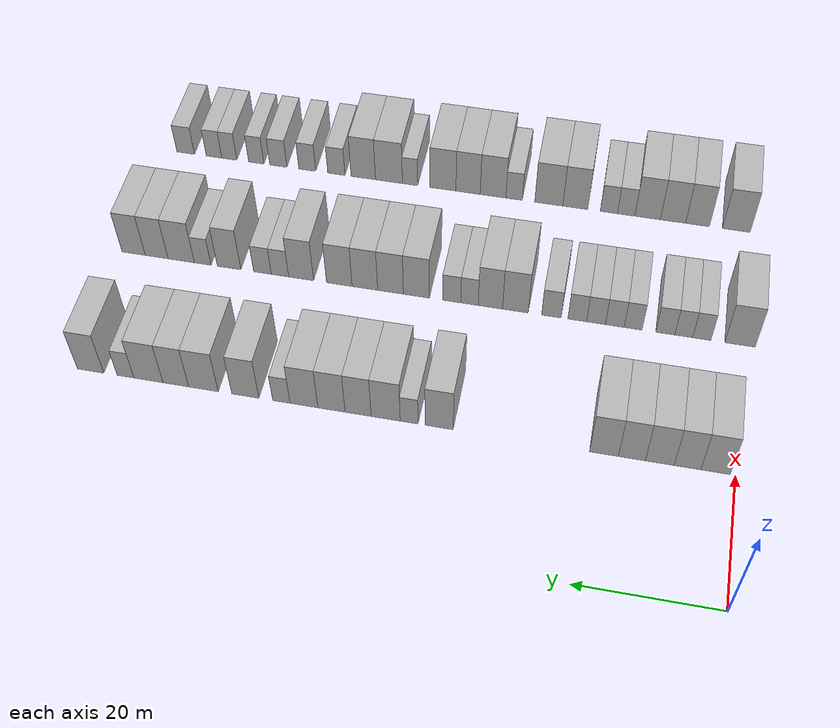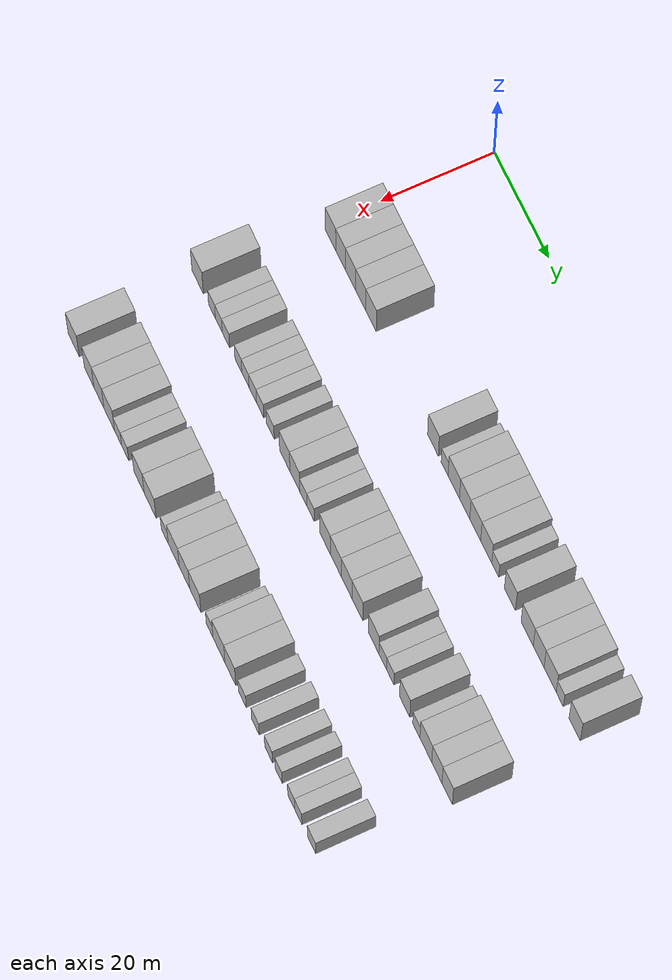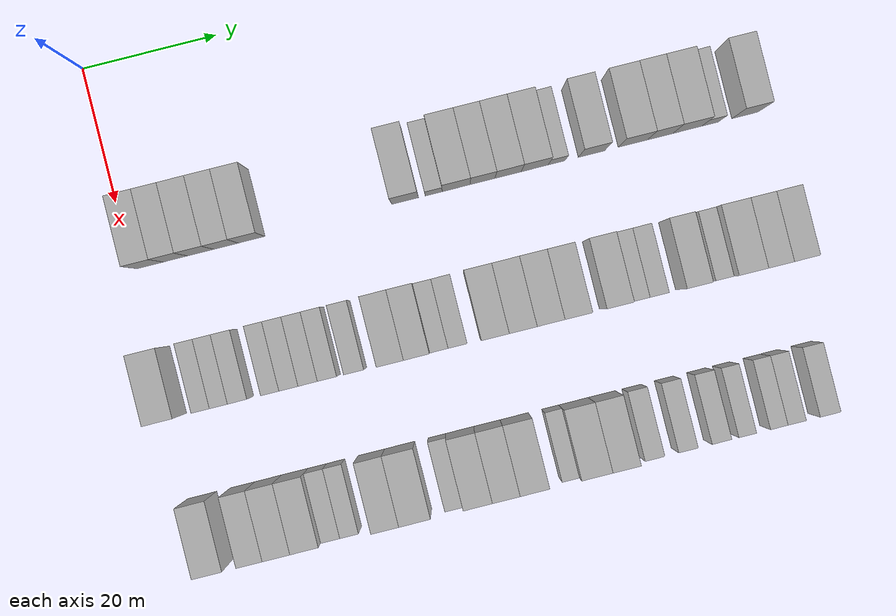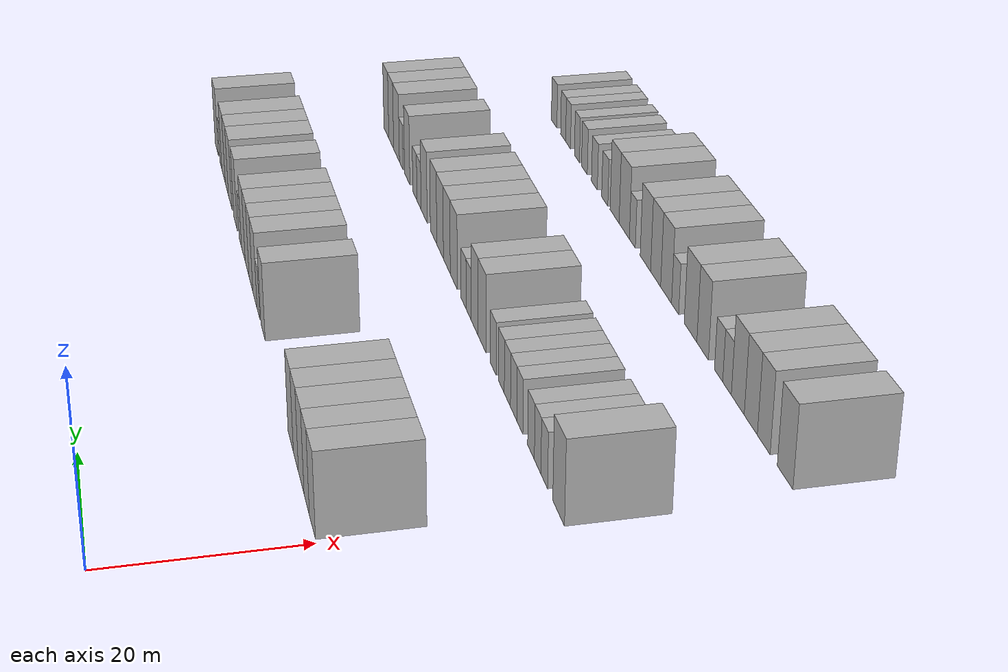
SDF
<sdf version="1.6">
 <world name="default">
  <model name="building_66">
   <static>1</static>
   <pose>25.0000 2.6651 0 0.000000 0.000000 0.000000</pose>
   <link name="link">
    <pose>0 0 4.50 0 0 0</pose>
    <collision name="collision"><geometry><box><size>10.0000 3.9461 9.0000</size></box></geometry></collision>
    <visual name="visual">
     <cast_shadows>0</cast_shadows>
     <geometry><box><size>10.0000 3.9461 9.0000</size></box></geometry>
     <material>
      <script>
       <uri>model://HANNAS_wall/materials/scripts</uri>
       <uri>model://HANNAS_wall/materials/textures</uri>
       <name>vrc/HANNAS_wall</name>
      </script>
     </material>
    </visual>
   </link>
  </model>
  <model name="building_67">
   <static>1</static>
   <pose>25.0000 6.4452 0 0.000000 0.000000 0.000000</pose>
   <link name="link">
    <pose>0 0 4.50 0 0 0</pose>
    <collision name="collision"><geometry><box><size>10.0000 3.6140 9.0000</size></box></geometry></collision>
    <visual name="visual">
     <cast_shadows>0</cast_shadows>
     <geometry><box><size>10.0000 3.6140 9.0000</size></box></geometry>
     <material>
      <script>
       <uri>model://HANNAS_wall/materials/scripts</uri>
       <uri>model://HANNAS_wall/materials/textures</uri>
       <name>vrc/HANNAS_wall</name>
      </script>
     </material>
    </visual>
   </link>
  </model>
  <model name="building_68">
   <static>1</static>
   <pose>25.0000 10.2072 0 0.000000 0.000000 0.000000</pose>
   <link name="link">
    <pose>0 0 4.50 0 0 0</pose>
    <collision name="collision"><geometry><box><size>10.0000 3.9101 9.0000</size></box></geometry></collision>
    <visual name="visual">
     <cast_shadows>0</cast_shadows>
     <geometry><box><size>10.0000 3.9101 9.0000</size></box></geometry>
     <material>
      <script>
       <uri>model://HANNAS_wall/materials/scripts</uri>
       <uri>model://HANNAS_wall/materials/textures</uri>
       <name>vrc/HANNAS_wall</name>
      </script>
     </material>
    </visual>
   </link>
  </model>
  <model name="building_69">
   <static>1</static>
   <pose>25.0000 13.9939 0 0.000000 0.000000 0.000000</pose>
   <link name="link">
    <pose>0 0 4.50 0 0 0</pose>
    <collision name="collision"><geometry><box><size>10.0000 3.6633 9.0000</size></box></geometry></collision>
    <visual name="visual">
     <cast_shadows>0</cast_shadows>
     <geometry><box><size>10.0000 3.6633 9.0000</size></box></geometry>
     <material>
      <script>
       <uri>model://HANNAS_wall/materials/scripts</uri>
       <uri>model://HANNAS_wall/materials/textures</uri>
       <name>vrc/HANNAS_wall</name>
      </script>
     </material>
    </visual>
   </link>
  </model>
  <model name="building_70">
   <static>1</static>
   <pose>25.0000 17.7979 0 0.000000 0.000000 0.000000</pose>
   <link name="link">
    <pose>0 0 4.50 0 0 0</pose>
    <collision name="collision"><geometry><box><size>10.0000 3.9448 9.0000</size></box></geometry></collision>
    <visual name="visual">
     <cast_shadows>0</cast_shadows>
     <geometry><box><size>10.0000 3.9448 9.0000</size></box></geometry>
     <material>
      <script>
       <uri>model://HANNAS_wall/materials/scripts</uri>
       <uri>model://HANNAS_wall/materials/textures</uri>
       <name>vrc/HANNAS_wall</name>
      </script>
     </material>
    </visual>
   </link>
  </model>
  <model name="building_71">
   <static>1</static>
   <pose>25.0000 40.7055 0 0.000000 0.000000 0.000000</pose>
   <link name="link">
    <pose>0 0 4.50 0 0 0</pose>
    <collision name="collision"><geometry><box><size>10.0000 3.9568 9.0000</size></box></geometry></collision>
    <visual name="visual">
     <cast_shadows>0</cast_shadows>
     <geometry><box><size>10.0000 3.9568 9.0000</size></box></geometry>
     <material>
      <script>
       <uri>model://HANNAS_wall/materials/scripts</uri>
       <uri>model://HANNAS_wall/materials/textures</uri>
       <name>vrc/HANNAS_wall</name>
      </script>
     </material>
    </visual>
   </link>
  </model>
  <model name="building_72">
   <static>1</static>
   <pose>25.0000 44.9468 0 0.000000 0.000000 0.000000</pose>
   <link name="link">
    <pose>0 0 3.00 0 0 0</pose>
    <collision name="collision"><geometry><box><size>10.0000 2.5258 6.0000</size></box></geometry></collision>
    <visual name="visual">
     <cast_shadows>0</cast_shadows>
     <geometry><box><size>10.0000 2.5258 6.0000</size></box></geometry>
     <material>
      <script>
       <uri>model://HANNAS_wall/materials/scripts</uri>
       <uri>model://HANNAS_wall/materials/textures</uri>
       <name>vrc/HANNAS_wall</name>
      </script>
     </material>
    </visual>
   </link>
  </model>
  <model name="building_73">
   <static>1</static>
   <pose>25.0000 48.2746 0 0.000000 0.000000 0.000000</pose>
   <link name="link">
    <pose>0 0 4.50 0 0 0</pose>
    <collision name="collision"><geometry><box><size>10.0000 4.1299 9.0000</size></box></geometry></collision>
    <visual name="visual">
     <cast_shadows>0</cast_shadows>
     <geometry><box><size>10.0000 4.1299 9.0000</size></box></geometry>
     <material>
      <script>
       <uri>model://HANNAS_wall/materials/scripts</uri>
       <uri>model://HANNAS_wall/materials/textures</uri>
       <name>vrc/HANNAS_wall</name>
      </script>
     </material>
    </visual>
   </link>
  </model>
  <model name="building_74">
   <static>1</static>
   <pose>25.0000 52.2053 0 0.000000 0.000000 0.000000</pose>
   <link name="link">
    <pose>0 0 4.50 0 0 0</pose>
    <collision name="collision"><geometry><box><size>10.0000 3.7315 9.0000</size></box></geometry></collision>
    <visual name="visual">
     <cast_shadows>0</cast_shadows>
     <geometry><box><size>10.0000 3.7315 9.0000</size></box></geometry>
     <material>
      <script>
       <uri>model://HANNAS_wall/materials/scripts</uri>
       <uri>model://HANNAS_wall/materials/textures</uri>
       <name>vrc/HANNAS_wall</name>
      </script>
     </material>
    </visual>
   </link>
  </model>
  <model name="building_75">
   <static>1</static>
   <pose>25.0000 56.0301 0 0.000000 0.000000 0.000000</pose>
   <link name="link">
    <pose>0 0 4.50 0 0 0</pose>
    <collision name="collision"><geometry><box><size>10.0000 3.9181 9.0000</size></box></geometry></collision>
    <visual name="visual">
     <cast_shadows>0</cast_shadows>
     <geometry><box><size>10.0000 3.9181 9.0000</size></box></geometry>
     <material>
      <script>
       <uri>model://HANNAS_wall/materials/scripts</uri>
       <uri>model://HANNAS_wall/materials/textures</uri>
       <name>vrc/HANNAS_wall</name>
      </script>
     </material>
    </visual>
   </link>
  </model>
  <model name="building_76">
   <static>1</static>
   <pose>25.0000 60.0025 0 0.000000 0.000000 0.000000</pose>
   <link name="link">
    <pose>0 0 4.50 0 0 0</pose>
    <collision name="collision"><geometry><box><size>10.0000 4.0267 9.0000</size></box></geometry></collision>
    <visual name="visual">
     <cast_shadows>0</cast_shadows>
     <geometry><box><size>10.0000 4.0267 9.0000</size></box></geometry>
     <material>
      <script>
       <uri>model://HANNAS_wall/materials/scripts</uri>
       <uri>model://HANNAS_wall/materials/textures</uri>
       <name>vrc/HANNAS_wall</name>
      </script>
     </material>
    </visual>
   </link>
  </model>
  <model name="building_77">
   <static>1</static>
   <pose>25.0000 63.2680 0 0.000000 0.000000 0.000000</pose>
   <link name="link">
    <pose>0 0 3.00 0 0 0</pose>
    <collision name="collision"><geometry><box><size>10.0000 2.5042 6.0000</size></box></geometry></collision>
    <visual name="visual">
     <cast_shadows>0</cast_shadows>
     <geometry><box><size>10.0000 2.5042 6.0000</size></box></geometry>
     <material>
      <script>
       <uri>model://HANNAS_wall/materials/scripts</uri>
       <uri>model://HANNAS_wall/materials/textures</uri>
       <name>vrc/HANNAS_wall</name>
      </script>
     </material>
    </visual>
   </link>
  </model>
  <model name="building_78">
   <static>1</static>
   <pose>25.0000 68.4990 0 0.000000 0.000000 0.000000</pose>
   <link name="link">
    <pose>0 0 4.50 0 0 0</pose>
    <collision name="collision"><geometry><box><size>10.0000 3.9580 9.0000</size></box></geometry></collision>
    <visual name="visual">
     <cast_shadows>0</cast_shadows>
     <geometry><box><size>10.0000 3.9580 9.0000</size></box></geometry>
     <material>
      <script>
       <uri>model://HANNAS_wall/materials/scripts</uri>
       <uri>model://HANNAS_wall/materials/textures</uri>
       <name>vrc/HANNAS_wall</name>
      </script>
     </material>
    </visual>
   </link>
  </model>
  <model name="building_79">
   <static>1</static>
   <pose>25.0000 74.6534 0 0.000000 0.000000 0.000000</pose>
   <link name="link">
    <pose>0 0 4.50 0 0 0</pose>
    <collision name="collision"><geometry><box><size>10.0000 4.3507 9.0000</size></box></geometry></collision>
    <visual name="visual">
     <cast_shadows>0</cast_shadows>
     <geometry><box><size>10.0000 4.3507 9.0000</size></box></geometry>
     <material>
      <script>
       <uri>model://HANNAS_wall/materials/scripts</uri>
       <uri>model://HANNAS_wall/materials/textures</uri>
       <name>vrc/HANNAS_wall</name>
      </script>
     </material>
    </visual>
   </link>
  </model>
  <model name="building_80">
   <static>1</static>
   <pose>25.0000 78.7271 0 0.000000 0.000000 0.000000</pose>
   <link name="link">
    <pose>0 0 4.50 0 0 0</pose>
    <collision name="collision"><geometry><box><size>10.0000 3.7967 9.0000</size></box></geometry></collision>
    <visual name="visual">
     <cast_shadows>0</cast_shadows>
     <geometry><box><size>10.0000 3.7967 9.0000</size></box></geometry>
     <material>
      <script>
       <uri>model://HANNAS_wall/materials/scripts</uri>
       <uri>model://HANNAS_wall/materials/textures</uri>
       <name>vrc/HANNAS_wall</name>
      </script>
     </material>
    </visual>
   </link>
  </model>
  <model name="building_81">
   <static>1</static>
   <pose>25.0000 82.7896 0 0.000000 0.000000 0.000000</pose>
   <link name="link">
    <pose>0 0 4.50 0 0 0</pose>
    <collision name="collision"><geometry><box><size>10.0000 4.3283 9.0000</size></box></geometry></collision>
    <visual name="visual">
     <cast_shadows>0</cast_shadows>
     <geometry><box><size>10.0000 4.3283 9.0000</size></box></geometry>
     <material>
      <script>
       <uri>model://HANNAS_wall/materials/scripts</uri>
       <uri>model://HANNAS_wall/materials/textures</uri>
       <name>vrc/HANNAS_wall</name>
      </script>
     </material>
    </visual>
   </link>
  </model>
  <model name="building_82">
   <static>1</static>
   <pose>25.0000 86.2012 0 0.000000 0.000000 0.000000</pose>
   <link name="link">
    <pose>0 0 3.00 0 0 0</pose>
    <collision name="collision"><geometry><box><size>10.0000 2.4949 6.0000</size></box></geometry></collision>
    <visual name="visual">
     <cast_shadows>0</cast_shadows>
     <geometry><box><size>10.0000 2.4949 6.0000</size></box></geometry>
     <material>
      <script>
       <uri>model://HANNAS_wall/materials/scripts</uri>
       <uri>model://HANNAS_wall/materials/textures</uri>
       <name>vrc/HANNAS_wall</name>
      </script>
     </material>
    </visual>
   </link>
  </model>
  <model name="building_83">
   <static>1</static>
   <pose>25.0000 91.4278 0 0.000000 0.000000 0.000000</pose>
   <link name="link">
    <pose>0 0 4.50 0 0 0</pose>
    <collision name="collision"><geometry><box><size>10.0000 3.9583 9.0000</size></box></geometry></collision>
    <visual name="visual">
     <cast_shadows>0</cast_shadows>
     <geometry><box><size>10.0000 3.9583 9.0000</size></box></geometry>
     <material>
      <script>
       <uri>model://HANNAS_wall/materials/scripts</uri>
       <uri>model://HANNAS_wall/materials/textures</uri>
       <name>vrc/HANNAS_wall</name>
      </script>
     </material>
    </visual>
   </link>
  </model>
  <model name="building_187">
   <static>1</static>
   <pose>47.0000 0.3637 0 0.000000 0.000000 0.000000</pose>
   <link name="link">
    <pose>0 0 4.50 0 0 0</pose>
    <collision name="collision"><geometry><box><size>10.0000 4.3739 9.0000</size></box></geometry></collision>
    <visual name="visual">
     <cast_shadows>0</cast_shadows>
     <geometry><box><size>10.0000 4.3739 9.0000</size></box></geometry>
     <material>
      <script>
       <uri>model://HANNAS_wall/materials/scripts</uri>
       <uri>model://HANNAS_wall/materials/textures</uri>
       <name>vrc/HANNAS_wall</name>
      </script>
     </material>
    </visual>
   </link>
  </model>
  <model name="building_188">
   <static>1</static>
   <pose>47.0000 5.8695 0 0.000000 0.000000 0.000000</pose>
   <link name="link">
    <pose>0 0 3.00 0 0 0</pose>
    <collision name="collision"><geometry><box><size>10.0000 2.6377 6.0000</size></box></geometry></collision>
    <visual name="visual">
     <cast_shadows>0</cast_shadows>
     <geometry><box><size>10.0000 2.6377 6.0000</size></box></geometry>
     <material>
      <script>
       <uri>model://HANNAS_wall/materials/scripts</uri>
       <uri>model://HANNAS_wall/materials/textures</uri>
       <name>vrc/HANNAS_wall</name>
      </script>
     </material>
    </visual>
   </link>
  </model>
  <model name="building_189">
   <static>1</static>
   <pose>47.0000 8.4897 0 0.000000 0.000000 0.000000</pose>
   <link name="link">
    <pose>0 0 3.00 0 0 0</pose>
    <collision name="collision"><geometry><box><size>10.0000 2.6026 6.0000</size></box></geometry></collision>
    <visual name="visual">
     <cast_shadows>0</cast_shadows>
     <geometry><box><size>10.0000 2.6026 6.0000</size></box></geometry>
     <material>
      <script>
       <uri>model://HANNAS_wall/materials/scripts</uri>
       <uri>model://HANNAS_wall/materials/textures</uri>
       <name>vrc/HANNAS_wall</name>
      </script>
     </material>
    </visual>
   </link>
  </model>
  <model name="building_190">
   <static>1</static>
   <pose>47.0000 11.1795 0 0.000000 0.000000 0.000000</pose>
   <link name="link">
    <pose>0 0 3.00 0 0 0</pose>
    <collision name="collision"><geometry><box><size>10.0000 2.7771 6.0000</size></box></geometry></collision>
    <visual name="visual">
     <cast_shadows>0</cast_shadows>
     <geometry><box><size>10.0000 2.7771 6.0000</size></box></geometry>
     <material>
      <script>
       <uri>model://HANNAS_wall/materials/scripts</uri>
       <uri>model://HANNAS_wall/materials/textures</uri>
       <name>vrc/HANNAS_wall</name>
      </script>
     </material>
    </visual>
   </link>
  </model>
  <model name="building_191">
   <static>1</static>
   <pose>47.0000 15.8798 0 0.000000 0.000000 0.000000</pose>
   <link name="link">
    <pose>0 0 3.00 0 0 0</pose>
    <collision name="collision"><geometry><box><size>10.0000 2.6235 6.0000</size></box></geometry></collision>
    <visual name="visual">
     <cast_shadows>0</cast_shadows>
     <geometry><box><size>10.0000 2.6235 6.0000</size></box></geometry>
     <material>
      <script>
       <uri>model://HANNAS_wall/materials/scripts</uri>
       <uri>model://HANNAS_wall/materials/textures</uri>
       <name>vrc/HANNAS_wall</name>
      </script>
     </material>
    </visual>
   </link>
  </model>
  <model name="building_192">
   <static>1</static>
   <pose>47.0000 18.5719 0 0.000000 0.000000 0.000000</pose>
   <link name="link">
    <pose>0 0 3.00 0 0 0</pose>
    <collision name="collision"><geometry><box><size>10.0000 2.7608 6.0000</size></box></geometry></collision>
    <visual name="visual">
     <cast_shadows>0</cast_shadows>
     <geometry><box><size>10.0000 2.7608 6.0000</size></box></geometry>
     <material>
      <script>
       <uri>model://HANNAS_wall/materials/scripts</uri>
       <uri>model://HANNAS_wall/materials/textures</uri>
       <name>vrc/HANNAS_wall</name>
      </script>
     </material>
    </visual>
   </link>
  </model>
  <model name="building_193">
   <static>1</static>
   <pose>47.0000 21.3458 0 0.000000 0.000000 0.000000</pose>
   <link name="link">
    <pose>0 0 3.00 0 0 0</pose>
    <collision name="collision"><geometry><box><size>10.0000 2.7870 6.0000</size></box></geometry></collision>
    <visual name="visual">
     <cast_shadows>0</cast_shadows>
     <geometry><box><size>10.0000 2.7870 6.0000</size></box></geometry>
     <material>
      <script>
       <uri>model://HANNAS_wall/materials/scripts</uri>
       <uri>model://HANNAS_wall/materials/textures</uri>
       <name>vrc/HANNAS_wall</name>
      </script>
     </material>
    </visual>
   </link>
  </model>
  <model name="building_194">
   <static>1</static>
   <pose>47.0000 24.1234 0 0.000000 0.000000 0.000000</pose>
   <link name="link">
    <pose>0 0 3.00 0 0 0</pose>
    <collision name="collision"><geometry><box><size>10.0000 2.7681 6.0000</size></box></geometry></collision>
    <visual name="visual">
     <cast_shadows>0</cast_shadows>
     <geometry><box><size>10.0000 2.7681 6.0000</size></box></geometry>
     <material>
      <script>
       <uri>model://HANNAS_wall/materials/scripts</uri>
       <uri>model://HANNAS_wall/materials/textures</uri>
       <name>vrc/HANNAS_wall</name>
      </script>
     </material>
    </visual>
   </link>
  </model>
  <model name="building_195">
   <static>1</static>
   <pose>47.0000 27.9568 0 0.000000 0.000000 0.000000</pose>
   <link name="link">
    <pose>0 0 3.00 0 0 0</pose>
    <collision name="collision"><geometry><box><size>10.0000 2.8988 6.0000</size></box></geometry></collision>
    <visual name="visual">
     <cast_shadows>0</cast_shadows>
     <geometry><box><size>10.0000 2.8988 6.0000</size></box></geometry>
     <material>
      <script>
       <uri>model://HANNAS_wall/materials/scripts</uri>
       <uri>model://HANNAS_wall/materials/textures</uri>
       <name>vrc/HANNAS_wall</name>
      </script>
     </material>
    </visual>
   </link>
  </model>
  <model name="building_196">
   <static>1</static>
   <pose>47.0000 33.3353 0 0.000000 0.000000 0.000000</pose>
   <link name="link">
    <pose>0 0 4.50 0 0 0</pose>
    <collision name="collision"><geometry><box><size>10.0000 3.8581 9.0000</size></box></geometry></collision>
    <visual name="visual">
     <cast_shadows>0</cast_shadows>
     <geometry><box><size>10.0000 3.8581 9.0000</size></box></geometry>
     <material>
      <script>
       <uri>model://HANNAS_wall/materials/scripts</uri>
       <uri>model://HANNAS_wall/materials/textures</uri>
       <name>vrc/HANNAS_wall</name>
      </script>
     </material>
    </visual>
   </link>
  </model>
  <model name="building_197">
   <static>1</static>
   <pose>47.0000 37.0944 0 0.000000 0.000000 0.000000</pose>
   <link name="link">
    <pose>0 0 4.50 0 0 0</pose>
    <collision name="collision"><geometry><box><size>10.0000 3.6600 9.0000</size></box></geometry></collision>
    <visual name="visual">
     <cast_shadows>0</cast_shadows>
     <geometry><box><size>10.0000 3.6600 9.0000</size></box></geometry>
     <material>
      <script>
       <uri>model://HANNAS_wall/materials/scripts</uri>
       <uri>model://HANNAS_wall/materials/textures</uri>
       <name>vrc/HANNAS_wall</name>
      </script>
     </material>
    </visual>
   </link>
  </model>
  <model name="building_198">
   <static>1</static>
   <pose>47.0000 40.2418 0 0.000000 0.000000 0.000000</pose>
   <link name="link">
    <pose>0 0 3.00 0 0 0</pose>
    <collision name="collision"><geometry><box><size>10.0000 2.6350 6.0000</size></box></geometry></collision>
    <visual name="visual">
     <cast_shadows>0</cast_shadows>
     <geometry><box><size>10.0000 2.6350 6.0000</size></box></geometry>
     <material>
      <script>
       <uri>model://HANNAS_wall/materials/scripts</uri>
       <uri>model://HANNAS_wall/materials/textures</uri>
       <name>vrc/HANNAS_wall</name>
      </script>
     </material>
    </visual>
   </link>
  </model>
  <model name="building_199">
   <static>1</static>
   <pose>47.0000 42.9352 0 0.000000 0.000000 0.000000</pose>
   <link name="link">
    <pose>0 0 3.00 0 0 0</pose>
    <collision name="collision"><geometry><box><size>10.0000 2.7517 6.0000</size></box></geometry></collision>
    <visual name="visual">
     <cast_shadows>0</cast_shadows>
     <geometry><box><size>10.0000 2.7517 6.0000</size></box></geometry>
     <material>
      <script>
       <uri>model://HANNAS_wall/materials/scripts</uri>
       <uri>model://HANNAS_wall/materials/textures</uri>
       <name>vrc/HANNAS_wall</name>
      </script>
     </material>
    </visual>
   </link>
  </model>
  <model name="building_200">
   <static>1</static>
   <pose>47.0000 48.2831 0 0.000000 0.000000 0.000000</pose>
   <link name="link">
    <pose>0 0 4.50 0 0 0</pose>
    <collision name="collision"><geometry><box><size>10.0000 3.9443 9.0000</size></box></geometry></collision>
    <visual name="visual">
     <cast_shadows>0</cast_shadows>
     <geometry><box><size>10.0000 3.9443 9.0000</size></box></geometry>
     <material>
      <script>
       <uri>model://HANNAS_wall/materials/scripts</uri>
       <uri>model://HANNAS_wall/materials/textures</uri>
       <name>vrc/HANNAS_wall</name>
      </script>
     </material>
    </visual>
   </link>
  </model>
  <model name="building_201">
   <static>1</static>
   <pose>47.0000 52.2329 0 0.000000 0.000000 0.000000</pose>
   <link name="link">
    <pose>0 0 4.50 0 0 0</pose>
    <collision name="collision"><geometry><box><size>10.0000 3.9553 9.0000</size></box></geometry></collision>
    <visual name="visual">
     <cast_shadows>0</cast_shadows>
     <geometry><box><size>10.0000 3.9553 9.0000</size></box></geometry>
     <material>
      <script>
       <uri>model://HANNAS_wall/materials/scripts</uri>
       <uri>model://HANNAS_wall/materials/textures</uri>
       <name>vrc/HANNAS_wall</name>
      </script>
     </material>
    </visual>
   </link>
  </model>
  <model name="building_202">
   <static>1</static>
   <pose>47.0000 56.1794 0 0.000000 0.000000 0.000000</pose>
   <link name="link">
    <pose>0 0 4.50 0 0 0</pose>
    <collision name="collision"><geometry><box><size>10.0000 3.9378 9.0000</size></box></geometry></collision>
    <visual name="visual">
     <cast_shadows>0</cast_shadows>
     <geometry><box><size>10.0000 3.9378 9.0000</size></box></geometry>
     <material>
      <script>
       <uri>model://HANNAS_wall/materials/scripts</uri>
       <uri>model://HANNAS_wall/materials/textures</uri>
       <name>vrc/HANNAS_wall</name>
      </script>
     </material>
    </visual>
   </link>
  </model>
  <model name="building_203">
   <static>1</static>
   <pose>47.0000 60.1191 0 0.000000 0.000000 0.000000</pose>
   <link name="link">
    <pose>0 0 4.50 0 0 0</pose>
    <collision name="collision"><geometry><box><size>10.0000 3.9416 9.0000</size></box></geometry></collision>
    <visual name="visual">
     <cast_shadows>0</cast_shadows>
     <geometry><box><size>10.0000 3.9416 9.0000</size></box></geometry>
     <material>
      <script>
       <uri>model://HANNAS_wall/materials/scripts</uri>
       <uri>model://HANNAS_wall/materials/textures</uri>
       <name>vrc/HANNAS_wall</name>
      </script>
     </material>
    </visual>
   </link>
  </model>
  <model name="building_204">
   <static>1</static>
   <pose>47.0000 66.0347 0 0.000000 0.000000 0.000000</pose>
   <link name="link">
    <pose>0 0 4.50 0 0 0</pose>
    <collision name="collision"><geometry><box><size>10.0000 3.8896 9.0000</size></box></geometry></collision>
    <visual name="visual">
     <cast_shadows>0</cast_shadows>
     <geometry><box><size>10.0000 3.8896 9.0000</size></box></geometry>
     <material>
      <script>
       <uri>model://HANNAS_wall/materials/scripts</uri>
       <uri>model://HANNAS_wall/materials/textures</uri>
       <name>vrc/HANNAS_wall</name>
      </script>
     </material>
    </visual>
   </link>
  </model>
  <model name="building_205">
   <static>1</static>
   <pose>47.0000 69.3382 0 0.000000 0.000000 0.000000</pose>
   <link name="link">
    <pose>0 0 3.00 0 0 0</pose>
    <collision name="collision"><geometry><box><size>10.0000 2.7172 6.0000</size></box></geometry></collision>
    <visual name="visual">
     <cast_shadows>0</cast_shadows>
     <geometry><box><size>10.0000 2.7172 6.0000</size></box></geometry>
     <material>
      <script>
       <uri>model://HANNAS_wall/materials/scripts</uri>
       <uri>model://HANNAS_wall/materials/textures</uri>
       <name>vrc/HANNAS_wall</name>
      </script>
     </material>
    </visual>
   </link>
  </model>
  <model name="building_206">
   <static>1</static>
   <pose>47.0000 72.0773 0 0.000000 0.000000 0.000000</pose>
   <link name="link">
    <pose>0 0 3.00 0 0 0</pose>
    <collision name="collision"><geometry><box><size>10.0000 2.7610 6.0000</size></box></geometry></collision>
    <visual name="visual">
     <cast_shadows>0</cast_shadows>
     <geometry><box><size>10.0000 2.7610 6.0000</size></box></geometry>
     <material>
      <script>
       <uri>model://HANNAS_wall/materials/scripts</uri>
       <uri>model://HANNAS_wall/materials/textures</uri>
       <name>vrc/HANNAS_wall</name>
      </script>
     </material>
    </visual>
   </link>
  </model>
  <model name="building_207">
   <static>1</static>
   <pose>47.0000 77.3125 0 0.000000 0.000000 0.000000</pose>
   <link name="link">
    <pose>0 0 4.50 0 0 0</pose>
    <collision name="collision"><geometry><box><size>10.0000 3.7095 9.0000</size></box></geometry></collision>
    <visual name="visual">
     <cast_shadows>0</cast_shadows>
     <geometry><box><size>10.0000 3.7095 9.0000</size></box></geometry>
     <material>
      <script>
       <uri>model://HANNAS_wall/materials/scripts</uri>
       <uri>model://HANNAS_wall/materials/textures</uri>
       <name>vrc/HANNAS_wall</name>
      </script>
     </material>
    </visual>
   </link>
  </model>
  <model name="building_208">
   <static>1</static>
   <pose>47.0000 81.4863 0 0.000000 0.000000 0.000000</pose>
   <link name="link">
    <pose>0 0 3.00 0 0 0</pose>
    <collision name="collision"><geometry><box><size>10.0000 2.6381 6.0000</size></box></geometry></collision>
    <visual name="visual">
     <cast_shadows>0</cast_shadows>
     <geometry><box><size>10.0000 2.6381 6.0000</size></box></geometry>
     <material>
      <script>
       <uri>model://HANNAS_wall/materials/scripts</uri>
       <uri>model://HANNAS_wall/materials/textures</uri>
       <name>vrc/HANNAS_wall</name>
      </script>
     </material>
    </visual>
   </link>
  </model>
  <model name="building_209">
   <static>1</static>
   <pose>47.0000 84.9018 0 0.000000 0.000000 0.000000</pose>
   <link name="link">
    <pose>0 0 4.50 0 0 0</pose>
    <collision name="collision"><geometry><box><size>10.0000 4.1928 9.0000</size></box></geometry></collision>
    <visual name="visual">
     <cast_shadows>0</cast_shadows>
     <geometry><box><size>10.0000 4.1928 9.0000</size></box></geometry>
     <material>
      <script>
       <uri>model://HANNAS_wall/materials/scripts</uri>
       <uri>model://HANNAS_wall/materials/textures</uri>
       <name>vrc/HANNAS_wall</name>
      </script>
     </material>
    </visual>
   </link>
  </model>
  <model name="building_210">
   <static>1</static>
   <pose>47.0000 88.8229 0 0.000000 0.000000 0.000000</pose>
   <link name="link">
    <pose>0 0 4.50 0 0 0</pose>
    <collision name="collision"><geometry><box><size>10.0000 3.6493 9.0000</size></box></geometry></collision>
    <visual name="visual">
     <cast_shadows>0</cast_shadows>
     <geometry><box><size>10.0000 3.6493 9.0000</size></box></geometry>
     <material>
      <script>
       <uri>model://HANNAS_wall/materials/scripts</uri>
       <uri>model://HANNAS_wall/materials/textures</uri>
       <name>vrc/HANNAS_wall</name>
      </script>
     </material>
    </visual>
   </link>
  </model>
  <model name="building_211">
   <static>1</static>
   <pose>47.0000 92.5057 0 0.000000 0.000000 0.000000</pose>
   <link name="link">
    <pose>0 0 4.50 0 0 0</pose>
    <collision name="collision"><geometry><box><size>10.0000 3.7162 9.0000</size></box></geometry></collision>
    <visual name="visual">
     <cast_shadows>0</cast_shadows>
     <geometry><box><size>10.0000 3.7162 9.0000</size></box></geometry>
     <material>
      <script>
       <uri>model://HANNAS_wall/materials/scripts</uri>
       <uri>model://HANNAS_wall/materials/textures</uri>
       <name>vrc/HANNAS_wall</name>
      </script>
     </material>
    </visual>
   </link>
  </model>
  <model name="building_326">
   <static>1</static>
   <pose>69.0000 1.8990 0 0.000000 0.000000 0.000000</pose>
   <link name="link">
    <pose>0 0 4.50 0 0 0</pose>
    <collision name="collision"><geometry><box><size>10.0000 4.2927 9.0000</size></box></geometry></collision>
    <visual name="visual">
     <cast_shadows>0</cast_shadows>
     <geometry><box><size>10.0000 4.2927 9.0000</size></box></geometry>
     <material>
      <script>
       <uri>model://HANNAS_wall/materials/scripts</uri>
       <uri>model://HANNAS_wall/materials/textures</uri>
       <name>vrc/HANNAS_wall</name>
      </script>
     </material>
    </visual>
   </link>
  </model>
  <model name="building_327">
   <static>1</static>
   <pose>69.0000 7.8975 0 0.000000 0.000000 0.000000</pose>
   <link name="link">
    <pose>0 0 4.50 0 0 0</pose>
    <collision name="collision"><geometry><box><size>10.0000 3.7043 9.0000</size></box></geometry></collision>
    <visual name="visual">
     <cast_shadows>0</cast_shadows>
     <geometry><box><size>10.0000 3.7043 9.0000</size></box></geometry>
     <material>
      <script>
       <uri>model://HANNAS_wall/materials/scripts</uri>
       <uri>model://HANNAS_wall/materials/textures</uri>
       <name>vrc/HANNAS_wall</name>
      </script>
     </material>
    </visual>
   </link>
  </model>
  <model name="building_328">
   <static>1</static>
   <pose>69.0000 11.7122 0 0.000000 0.000000 0.000000</pose>
   <link name="link">
    <pose>0 0 4.50 0 0 0</pose>
    <collision name="collision"><geometry><box><size>10.0000 3.9250 9.0000</size></box></geometry></collision>
    <visual name="visual">
     <cast_shadows>0</cast_shadows>
     <geometry><box><size>10.0000 3.9250 9.0000</size></box></geometry>
     <material>
      <script>
       <uri>model://HANNAS_wall/materials/scripts</uri>
       <uri>model://HANNAS_wall/materials/textures</uri>
       <name>vrc/HANNAS_wall</name>
      </script>
     </material>
    </visual>
   </link>
  </model>
  <model name="building_329">
   <static>1</static>
   <pose>69.0000 15.6755 0 0.000000 0.000000 0.000000</pose>
   <link name="link">
    <pose>0 0 4.50 0 0 0</pose>
    <collision name="collision"><geometry><box><size>10.0000 4.0016 9.0000</size></box></geometry></collision>
    <visual name="visual">
     <cast_shadows>0</cast_shadows>
     <geometry><box><size>10.0000 4.0016 9.0000</size></box></geometry>
     <material>
      <script>
       <uri>model://HANNAS_wall/materials/scripts</uri>
       <uri>model://HANNAS_wall/materials/textures</uri>
       <name>vrc/HANNAS_wall</name>
      </script>
     </material>
    </visual>
   </link>
  </model>
  <model name="building_330">
   <static>1</static>
   <pose>69.0000 19.0515 0 0.000000 0.000000 0.000000</pose>
   <link name="link">
    <pose>0 0 3.00 0 0 0</pose>
    <collision name="collision"><geometry><box><size>10.0000 2.7503 6.0000</size></box></geometry></collision>
    <visual name="visual">
     <cast_shadows>0</cast_shadows>
     <geometry><box><size>10.0000 2.7503 6.0000</size></box></geometry>
     <material>
      <script>
       <uri>model://HANNAS_wall/materials/scripts</uri>
       <uri>model://HANNAS_wall/materials/textures</uri>
       <name>vrc/HANNAS_wall</name>
      </script>
     </material>
    </visual>
   </link>
  </model>
  <model name="building_331">
   <static>1</static>
   <pose>69.0000 21.7682 0 0.000000 0.000000 0.000000</pose>
   <link name="link">
    <pose>0 0 3.00 0 0 0</pose>
    <collision name="collision"><geometry><box><size>10.0000 2.6831 6.0000</size></box></geometry></collision>
    <visual name="visual">
     <cast_shadows>0</cast_shadows>
     <geometry><box><size>10.0000 2.6831 6.0000</size></box></geometry>
     <material>
      <script>
       <uri>model://HANNAS_wall/materials/scripts</uri>
       <uri>model://HANNAS_wall/materials/textures</uri>
       <name>vrc/HANNAS_wall</name>
      </script>
     </material>
    </visual>
   </link>
  </model>
  <model name="building_332">
   <static>1</static>
   <pose>69.0000 27.0849 0 0.000000 0.000000 0.000000</pose>
   <link name="link">
    <pose>0 0 4.50 0 0 0</pose>
    <collision name="collision"><geometry><box><size>10.0000 3.9504 9.0000</size></box></geometry></collision>
    <visual name="visual">
     <cast_shadows>0</cast_shadows>
     <geometry><box><size>10.0000 3.9504 9.0000</size></box></geometry>
     <material>
      <script>
       <uri>model://HANNAS_wall/materials/scripts</uri>
       <uri>model://HANNAS_wall/materials/textures</uri>
       <name>vrc/HANNAS_wall</name>
      </script>
     </material>
    </visual>
   </link>
  </model>
  <model name="building_333">
   <static>1</static>
   <pose>69.0000 31.3008 0 0.000000 0.000000 0.000000</pose>
   <link name="link">
    <pose>0 0 4.50 0 0 0</pose>
    <collision name="collision"><geometry><box><size>10.0000 4.4813 9.0000</size></box></geometry></collision>
    <visual name="visual">
     <cast_shadows>0</cast_shadows>
     <geometry><box><size>10.0000 4.4813 9.0000</size></box></geometry>
     <material>
      <script>
       <uri>model://HANNAS_wall/materials/scripts</uri>
       <uri>model://HANNAS_wall/materials/textures</uri>
       <name>vrc/HANNAS_wall</name>
      </script>
     </material>
    </visual>
   </link>
  </model>
  <model name="building_334">
   <static>1</static>
   <pose>69.0000 36.8525 0 0.000000 0.000000 0.000000</pose>
   <link name="link">
    <pose>0 0 3.00 0 0 0</pose>
    <collision name="collision"><geometry><box><size>10.0000 2.6220 6.0000</size></box></geometry></collision>
    <visual name="visual">
     <cast_shadows>0</cast_shadows>
     <geometry><box><size>10.0000 2.6220 6.0000</size></box></geometry>
     <material>
      <script>
       <uri>model://HANNAS_wall/materials/scripts</uri>
       <uri>model://HANNAS_wall/materials/textures</uri>
       <name>vrc/HANNAS_wall</name>
      </script>
     </material>
    </visual>
   </link>
  </model>
  <model name="building_335">
   <static>1</static>
   <pose>69.0000 40.2333 0 0.000000 0.000000 0.000000</pose>
   <link name="link">
    <pose>0 0 4.50 0 0 0</pose>
    <collision name="collision"><geometry><box><size>10.0000 4.1397 9.0000</size></box></geometry></collision>
    <visual name="visual">
     <cast_shadows>0</cast_shadows>
     <geometry><box><size>10.0000 4.1397 9.0000</size></box></geometry>
     <material>
      <script>
       <uri>model://HANNAS_wall/materials/scripts</uri>
       <uri>model://HANNAS_wall/materials/textures</uri>
       <name>vrc/HANNAS_wall</name>
      </script>
     </material>
    </visual>
   </link>
  </model>
  <model name="building_336">
   <static>1</static>
   <pose>69.0000 44.2701 0 0.000000 0.000000 0.000000</pose>
   <link name="link">
    <pose>0 0 4.50 0 0 0</pose>
    <collision name="collision"><geometry><box><size>10.0000 3.9340 9.0000</size></box></geometry></collision>
    <visual name="visual">
     <cast_shadows>0</cast_shadows>
     <geometry><box><size>10.0000 3.9340 9.0000</size></box></geometry>
     <material>
      <script>
       <uri>model://HANNAS_wall/materials/scripts</uri>
       <uri>model://HANNAS_wall/materials/textures</uri>
       <name>vrc/HANNAS_wall</name>
      </script>
     </material>
    </visual>
   </link>
  </model>
  <model name="building_337">
   <static>1</static>
   <pose>69.0000 48.3376 0 0.000000 0.000000 0.000000</pose>
   <link name="link">
    <pose>0 0 4.50 0 0 0</pose>
    <collision name="collision"><geometry><box><size>10.0000 4.2009 9.0000</size></box></geometry></collision>
    <visual name="visual">
     <cast_shadows>0</cast_shadows>
     <geometry><box><size>10.0000 4.2009 9.0000</size></box></geometry>
     <material>
      <script>
       <uri>model://HANNAS_wall/materials/scripts</uri>
       <uri>model://HANNAS_wall/materials/textures</uri>
       <name>vrc/HANNAS_wall</name>
      </script>
     </material>
    </visual>
   </link>
  </model>
  <model name="building_338">
   <static>1</static>
   <pose>69.0000 53.6915 0 0.000000 0.000000 0.000000</pose>
   <link name="link">
    <pose>0 0 3.00 0 0 0</pose>
    <collision name="collision"><geometry><box><size>10.0000 2.5071 6.0000</size></box></geometry></collision>
    <visual name="visual">
     <cast_shadows>0</cast_shadows>
     <geometry><box><size>10.0000 2.5071 6.0000</size></box></geometry>
     <material>
      <script>
       <uri>model://HANNAS_wall/materials/scripts</uri>
       <uri>model://HANNAS_wall/materials/textures</uri>
       <name>vrc/HANNAS_wall</name>
      </script>
     </material>
    </visual>
   </link>
  </model>
  <model name="building_339">
   <static>1</static>
   <pose>69.0000 57.1571 0 0.000000 0.000000 0.000000</pose>
   <link name="link">
    <pose>0 0 4.50 0 0 0</pose>
    <collision name="collision"><geometry><box><size>10.0000 4.4241 9.0000</size></box></geometry></collision>
    <visual name="visual">
     <cast_shadows>0</cast_shadows>
     <geometry><box><size>10.0000 4.4241 9.0000</size></box></geometry>
     <material>
      <script>
       <uri>model://HANNAS_wall/materials/scripts</uri>
       <uri>model://HANNAS_wall/materials/textures</uri>
       <name>vrc/HANNAS_wall</name>
      </script>
     </material>
    </visual>
   </link>
  </model>
  <model name="building_340">
   <static>1</static>
   <pose>69.0000 61.3793 0 0.000000 0.000000 0.000000</pose>
   <link name="link">
    <pose>0 0 4.50 0 0 0</pose>
    <collision name="collision"><geometry><box><size>10.0000 4.0202 9.0000</size></box></geometry></collision>
    <visual name="visual">
     <cast_shadows>0</cast_shadows>
     <geometry><box><size>10.0000 4.0202 9.0000</size></box></geometry>
     <material>
      <script>
       <uri>model://HANNAS_wall/materials/scripts</uri>
       <uri>model://HANNAS_wall/materials/textures</uri>
       <name>vrc/HANNAS_wall</name>
      </script>
     </material>
    </visual>
   </link>
  </model>
  <model name="building_341">
   <static>1</static>
   <pose>69.0000 65.8138 0 0.000000 0.000000 0.000000</pose>
   <link name="link">
    <pose>0 0 3.00 0 0 0</pose>
    <collision name="collision"><geometry><box><size>10.0000 2.8487 6.0000</size></box></geometry></collision>
    <visual name="visual">
     <cast_shadows>0</cast_shadows>
     <geometry><box><size>10.0000 2.8487 6.0000</size></box></geometry>
     <material>
      <script>
       <uri>model://HANNAS_wall/materials/scripts</uri>
       <uri>model://HANNAS_wall/materials/textures</uri>
       <name>vrc/HANNAS_wall</name>
      </script>
     </material>
    </visual>
   </link>
  </model>
  <model name="building_342">
   <static>1</static>
   <pose>69.0000 70.6420 0 0.000000 0.000000 0.000000</pose>
   <link name="link">
    <pose>0 0 3.00 0 0 0</pose>
    <collision name="collision"><geometry><box><size>10.0000 2.8078 6.0000</size></box></geometry></collision>
    <visual name="visual">
     <cast_shadows>0</cast_shadows>
     <geometry><box><size>10.0000 2.8078 6.0000</size></box></geometry>
     <material>
      <script>
       <uri>model://HANNAS_wall/materials/scripts</uri>
       <uri>model://HANNAS_wall/materials/textures</uri>
       <name>vrc/HANNAS_wall</name>
      </script>
     </material>
    </visual>
   </link>
  </model>
  <model name="building_343">
   <static>1</static>
   <pose>69.0000 75.4685 0 0.000000 0.000000 0.000000</pose>
   <link name="link">
    <pose>0 0 3.00 0 0 0</pose>
    <collision name="collision"><geometry><box><size>10.0000 2.8452 6.0000</size></box></geometry></collision>
    <visual name="visual">
     <cast_shadows>0</cast_shadows>
     <geometry><box><size>10.0000 2.8452 6.0000</size></box></geometry>
     <material>
      <script>
       <uri>model://HANNAS_wall/materials/scripts</uri>
       <uri>model://HANNAS_wall/materials/textures</uri>
       <name>vrc/HANNAS_wall</name>
      </script>
     </material>
    </visual>
   </link>
  </model>
  <model name="building_344">
   <static>1</static>
   <pose>69.0000 79.1720 0 0.000000 0.000000 0.000000</pose>
   <link name="link">
    <pose>0 0 3.00 0 0 0</pose>
    <collision name="collision"><geometry><box><size>10.0000 2.5617 6.0000</size></box></geometry></collision>
    <visual name="visual">
     <cast_shadows>0</cast_shadows>
     <geometry><box><size>10.0000 2.5617 6.0000</size></box></geometry>
     <material>
      <script>
       <uri>model://HANNAS_wall/materials/scripts</uri>
       <uri>model://HANNAS_wall/materials/textures</uri>
       <name>vrc/HANNAS_wall</name>
      </script>
     </material>
    </visual>
   </link>
  </model>
  <model name="building_345">
   <static>1</static>
   <pose>69.0000 83.7181 0 0.000000 0.000000 0.000000</pose>
   <link name="link">
    <pose>0 0 3.00 0 0 0</pose>
    <collision name="collision"><geometry><box><size>10.0000 2.5305 6.0000</size></box></geometry></collision>
    <visual name="visual">
     <cast_shadows>0</cast_shadows>
     <geometry><box><size>10.0000 2.5305 6.0000</size></box></geometry>
     <material>
      <script>
       <uri>model://HANNAS_wall/materials/scripts</uri>
       <uri>model://HANNAS_wall/materials/textures</uri>
       <name>vrc/HANNAS_wall</name>
      </script>
     </material>
    </visual>
   </link>
  </model>
  <model name="building_346">
   <static>1</static>
   <pose>69.0000 86.2982 0 0.000000 0.000000 0.000000</pose>
   <link name="link">
    <pose>0 0 3.00 0 0 0</pose>
    <collision name="collision"><geometry><box><size>10.0000 2.6299 6.0000</size></box></geometry></collision>
    <visual name="visual">
     <cast_shadows>0</cast_shadows>
     <geometry><box><size>10.0000 2.6299 6.0000</size></box></geometry>
     <material>
      <script>
       <uri>model://HANNAS_wall/materials/scripts</uri>
       <uri>model://HANNAS_wall/materials/textures</uri>
       <name>vrc/HANNAS_wall</name>
      </script>
     </material>
    </visual>
   </link>
  </model>
  <model name="building_347">
   <static>1</static>
   <pose>69.0000 91.1096 0 0.000000 0.000000 0.000000</pose>
   <link name="link">
    <pose>0 0 3.00 0 0 0</pose>
    <collision name="collision"><geometry><box><size>10.0000 2.9929 6.0000</size></box></geometry></collision>
    <visual name="visual">
     <cast_shadows>0</cast_shadows>
     <geometry><box><size>10.0000 2.9929 6.0000</size></box></geometry>
     <material>
      <script>
       <uri>model://HANNAS_wall/materials/scripts</uri>
       <uri>model://HANNAS_wall/materials/textures</uri>
       <name>vrc/HANNAS_wall</name>
      </script>
     </material>
    </visual>
   </link>
  </model>
 </world>
</sdf>
